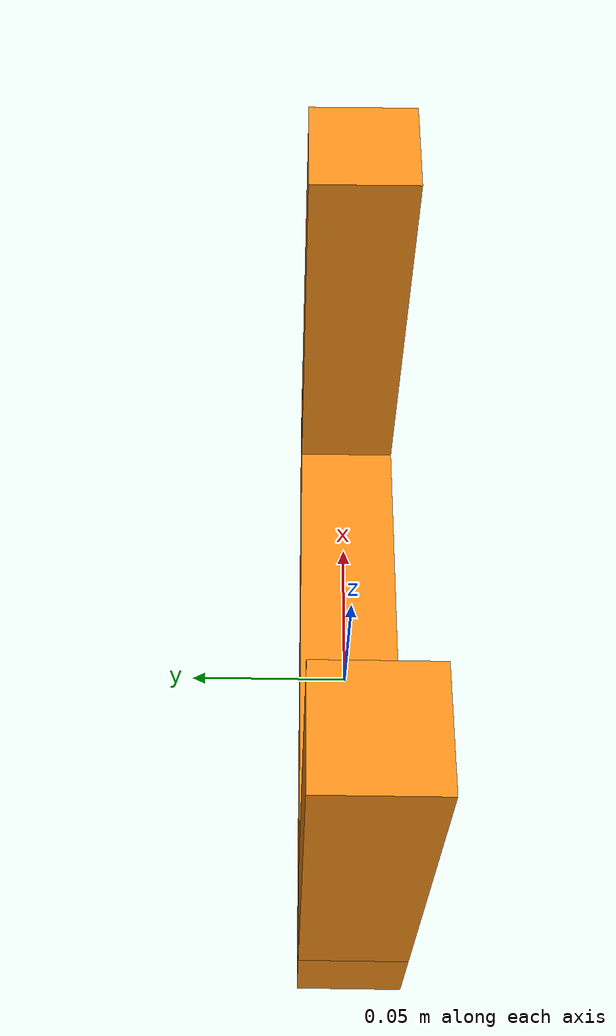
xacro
<?xml version="1.0" ?>
<robot name="gripper" xmlns:xacro="http://ros.org/wiki/xacro">
  <!-- start: Properties -->
  <xacro:property name="pi" value="3.1415926535897931" />
  <xacro:property name="finger_width" value="0.03" />
  <xacro:property name="finger_length" value="0.12" />
  <xacro:property name="ankle_width" value="0.03" />
  <xacro:property name="ankle_length" value="0.2" />
  <xacro:property name="mass" value="0.1" />
  <!-- end: Properties -->

  <!-- start: Macro Definitions -->
  <xacro:macro name="block" params="name height width depth mass *origin">
    <link name="${name}">
      <visual>
	<geometry>
	  <box size="${height} ${width} ${depth}" />
	</geometry>
	<xacro:insert_block name="origin" />
      </visual>
      <collision>
	<geometry>
	  <box size="${height} ${width} ${depth}" />
	</geometry>
	<xacro:insert_block name="origin" />
      </collision>
      <inertial>
	<mass value="${mass}" />
	<inertia ixx="${mass/12*(width * width + depth * depth)}" ixy="0.0" ixz="0.0"
		 iyy="${mass/12*(depth * depth + height * height)}" iyz="0.0"
		 izz="${mass/12*(width * width + height * height)}" />
      </inertial>
    </link>
  </xacro:macro>
  <!-- end: Macro Definitions -->

  <!-- start:Gripper Link -->
  <xacro:block name="gripper_link" height="${ankle_width}" width="${ankle_length}" depth="${ankle_width}" mass="${mass}">
    <origin xyz="0.0 0.0 ${finger_width/2}" rpy="0 0 ${pi/2}" />
  </xacro:block>
  <!-- end:Gripper Link -->

  <!-- start: Right Finger -->
  <xacro:block name="r_finger_link" height="${finger_width}" width="${finger_length}" depth="${finger_width}" mass="${mass}">
    <origin xyz="${finger_width/2} 0.0 0.0" rpy="0 0 0" />
  </xacro:block>

  <joint name="r_finger_joint" type="prismatic">
    <limit lower="${0}" upper="${ankle_length/2 - finger_width}" effort="100.0" velocity="5.0"/>
    <dynamics damping="0.1"></dynamics>
    <parent link="gripper_link"/>
    <child link="r_finger_link"/>
    <origin xyz="${-ankle_length/2} 0.0 ${finger_length/2 + ankle_width}" rpy="${pi/2} 0 0" />
  </joint>

  <transmission name="r_finger_trans">
    <type>transmission_interface/SimpleTransmission</type>
    <joint name="r_finger_joint">
      <hardwareInterface>hardware_interface/EffortJointInterface</hardwareInterface>
    </joint>
    <actuator name="r_finger_motor">
      <mechanicalReduction>1</mechanicalReduction>
    </actuator>
  </transmission>
  <!-- end: Right Finger -->

  <!-- start: Left Finger -->
  <xacro:block name="l_finger_link" height="${finger_width}" width="${finger_length}" depth="${finger_width}" mass="${mass}">
    <origin xyz="${finger_width/2} 0.0 0.0" rpy="0 0 0" />
  </xacro:block>

  <joint name="l_finger_joint" type="prismatic">
    <limit lower="${0}" upper="${ankle_length/2 - finger_width}" effort="100.0" velocity="5.0"/>
    <dynamics damping="0.1"></dynamics>
    <parent link="gripper_link"/>
    <child link="l_finger_link"/>
    <origin xyz="${ankle_length/2} 0.0 ${finger_length/2 + ankle_width}" rpy="${pi/2} 0 ${pi}" />
  </joint>

  <transmission name="l_finger_trans">
    <type>transmission_interface/SimpleTransmission</type>
    <joint name="l_finger_joint">
      <hardwareInterface>hardware_interface/EffortJointInterface</hardwareInterface>
    </joint>
    <actuator name="l_finger_motor">
      <mechanicalReduction>1</mechanicalReduction>
    </actuator>
  </transmission>
  <!-- end: Left Finger -->

  <!-- start: Tool Center Point (TCP) -->
  <link name="tcp_link"/>
  <joint name="tcp_joint" type="fixed">
    <origin xyz="0 0 ${ankle_width + finger_length/2}" rpy="0 ${-pi/2} ${pi/2}"/>
    <parent link="gripper_link"/>
    <child link="tcp_link"/>
  </joint>
  <!-- end: Tool Center Point (TCP) -->

  <!-- start: Gazebo material information -->
  <gazebo reference="gripper_link">
    <material>Gazebo/Orange</material>
  </gazebo>
  <gazebo reference="l_finger_link">
    <material>Gazebo/Orange</material>
  </gazebo>
  <gazebo reference="r_finger_link">
    <material>Gazebo/Orange</material>
  </gazebo>
  <!-- end: Gazebo material information -->
</robot>
